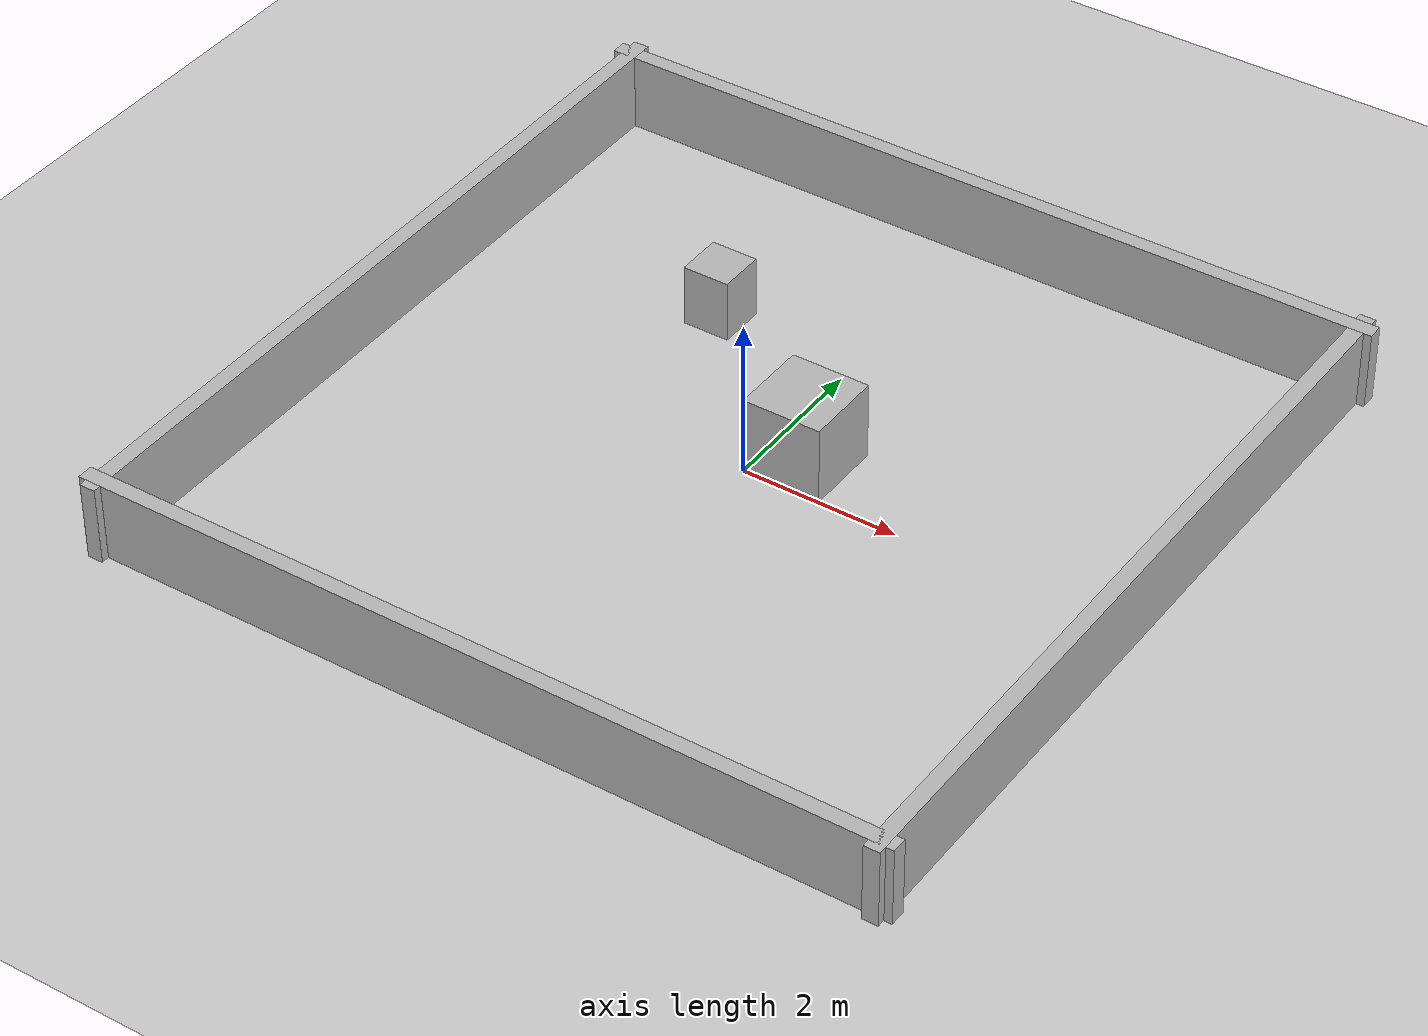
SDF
<?xml version="1.0"?>
<sdf version="1.6">
  <world name="simple_world">
    <gravity>0 0 -9.81</gravity>
    <include><uri>model://ground_plane</uri></include>
    <include><uri>model://sun</uri></include>

    <!-- ---- 4 perimeter walls (10x10 m room, 1 m tall) ---- -->
    <model name="wall_north">
      <static>true</static>
      <pose>0 5 0.5 0 0 0</pose>
      <link name="link">
        <visual name="v"><geometry><box><size>10.4 0.2 1.0</size></box></geometry></visual>
        <collision name="c"><geometry><box><size>10.4 0.2 1.0</size></box></geometry></collision>
      </link>
    </model>
    <model name="wall_south">
      <static>true</static>
      <pose>0 -5 0.5 0 0 0</pose>
      <link name="link">
        <visual name="v"><geometry><box><size>10.4 0.2 1.0</size></box></geometry></visual>
        <collision name="c"><geometry><box><size>10.4 0.2 1.0</size></box></geometry></collision>
      </link>
    </model>
    <model name="wall_east">
      <static>true</static>
      <pose>5 0 0.5 0 0 0</pose>
      <link name="link">
        <visual name="v"><geometry><box><size>0.2 10.4 1.0</size></box></geometry></visual>
        <collision name="c"><geometry><box><size>0.2 10.4 1.0</size></box></geometry></collision>
      </link>
    </model>
    <model name="wall_west">
      <static>true</static>
      <pose>-5 0 0.5 0 0 0</pose>
      <link name="link">
        <visual name="v"><geometry><box><size>0.2 10.4 1.0</size></box></geometry></visual>
        <collision name="c"><geometry><box><size>0.2 10.4 1.0</size></box></geometry></collision>
      </link>
    </model>

    <!-- ---- 2 simple obstacles inside ---- -->
    <model name="box_center">
      <static>true</static>
      <pose>0.5 0.5 0.5 0 0 0</pose>
      <link name="link">
        <visual name="v"><geometry><box><size>1.0 1.0 1.0</size></box></geometry></visual>
        <collision name="c"><geometry><box><size>1.0 1.0 1.0</size></box></geometry></collision>
      </link>
    </model>
    <model name="box_small">
      <static>true</static>
      <pose>-1.8 2.2 0.4 0 0 0</pose>
      <link name="link">
        <visual name="v"><geometry><box><size>0.6 0.6 0.8</size></box></geometry></visual>
        <collision name="c"><geometry><box><size>0.6 0.6 0.8</size></box></geometry></collision>
      </link>
    </model>
  </world>
</sdf>
